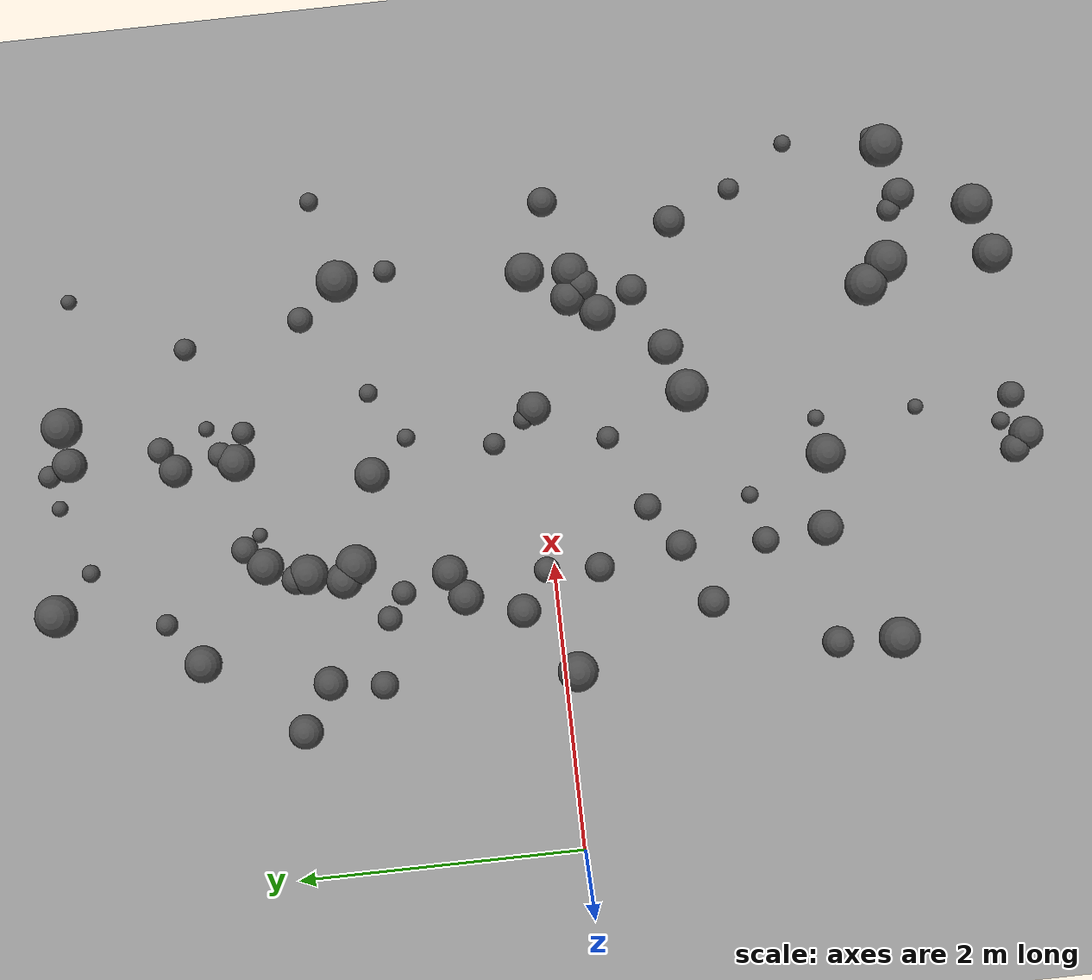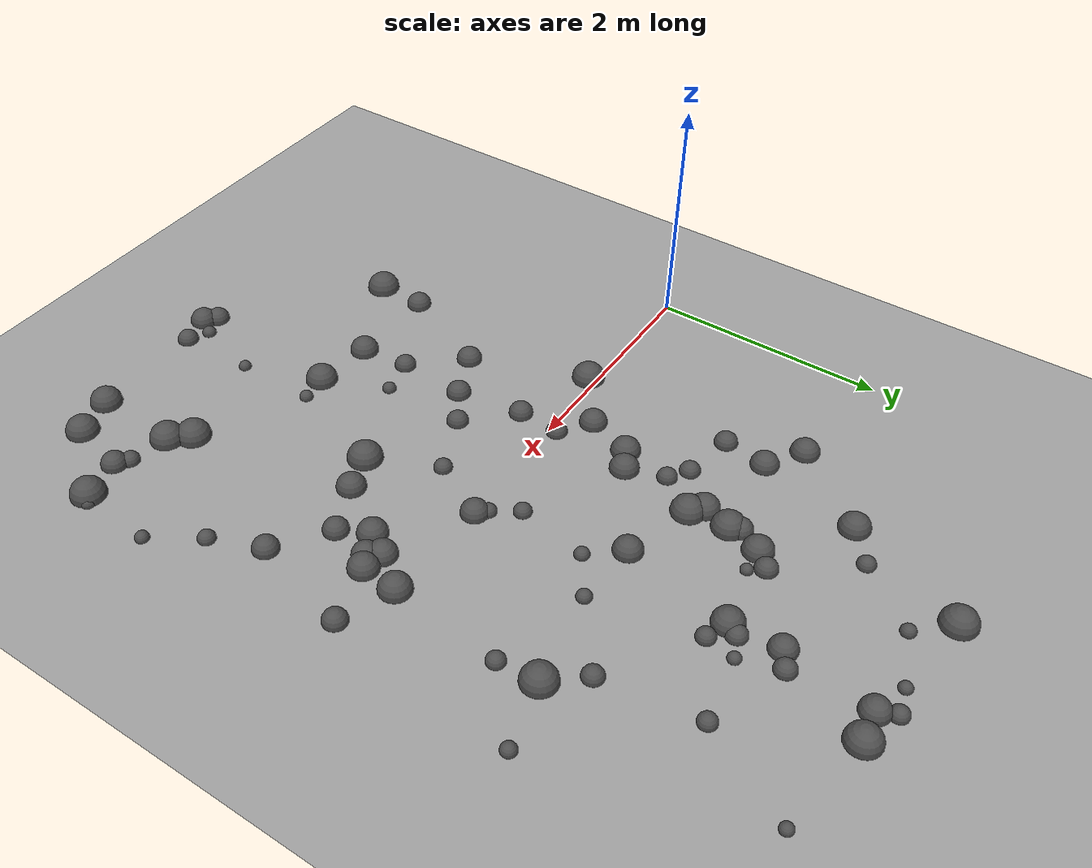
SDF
<sdf version="1.8">
 <world name="bumpy_world">
  <model name="ground_plane">
   <static>true</static>
   <link name="link">
    <collision name="collision">
     <geometry><plane><normal>0 0 1</normal><size>100 100</size></plane></geometry>
    </collision>
    <visual name="visual">
     <geometry><plane><normal>0 0 1</normal><size>100 100</size></plane></geometry>
     <material><ambient>0.6 0.6 0.6 1</ambient><diffuse>0.6 0.6 0.6 1</diffuse></material>
    </visual>
   </link>
  </model>
  <model name="bump_10">
   <static>true</static>
   <pose>2.8198943444306965 -1.9201657104563592 0.0 0 0 0</pose>
   <link name="link">
    <collision name="collision">
     <geometry><sphere><radius>0.05871827700337499</radius></sphere></geometry>
    </collision>
    <visual name="visual">
     <geometry><sphere><radius>0.05871827700337499</radius></sphere></geometry>
     <material><ambient>0.3 0.3 0.3 1</ambient><diffuse>0.3 0.3 0.3 1</diffuse></material>
    </visual>
   </link>
  </model>
  <model name="bump_12">
   <static>true</static>
   <pose>3.1977501311860017 2.3142075232296957 0.0 0 0 0</pose>
   <link name="link">
    <collision name="collision">
     <geometry><sphere><radius>0.055547300443830605</radius></sphere></geometry>
    </collision>
    <visual name="visual">
     <geometry><sphere><radius>0.055547300443830605</radius></sphere></geometry>
     <material><ambient>0.3 0.3 0.3 1</ambient><diffuse>0.3 0.3 0.3 1</diffuse></material>
    </visual>
   </link>
  </model>
  <model name="bump_22">
   <static>true</static>
   <pose>1.2356416099117413 -2.334673040265158 0.0 0 0 0</pose>
   <link name="link">
    <collision name="collision">
     <geometry><sphere><radius>0.14522170684553803</radius></sphere></geometry>
    </collision>
    <visual name="visual">
     <geometry><sphere><radius>0.14522170684553803</radius></sphere></geometry>
     <material><ambient>0.3 0.3 0.3 1</ambient><diffuse>0.3 0.3 0.3 1</diffuse></material>
    </visual>
   </link>
  </model>
  <model name="bump_25">
   <static>true</static>
   <pose>4.210508719758319 -2.5828001585416596 0.0 0 0 0</pose>
   <link name="link">
    <collision name="collision">
     <geometry><sphere><radius>0.08065998538427757</radius></sphere></geometry>
    </collision>
    <visual name="visual">
     <geometry><sphere><radius>0.08065998538427757</radius></sphere></geometry>
     <material><ambient>0.3 0.3 0.3 1</ambient><diffuse>0.3 0.3 0.3 1</diffuse></material>
    </visual>
   </link>
  </model>
  <model name="bump_33">
   <static>true</static>
   <pose>1.7474648537265793 1.1811615171004792 0.0 0 0 0</pose>
   <link name="link">
    <collision name="collision">
     <geometry><sphere><radius>0.08729903216262903</radius></sphere></geometry>
    </collision>
    <visual name="visual">
     <geometry><sphere><radius>0.08729903216262903</radius></sphere></geometry>
     <material><ambient>0.3 0.3 0.3 1</ambient><diffuse>0.3 0.3 0.3 1</diffuse></material>
    </visual>
   </link>
  </model>
  <model name="bump_45">
   <static>true</static>
   <pose>2.930702308674185 2.558518357739353 0.0 0 0 0</pose>
   <link name="link">
    <collision name="collision">
     <geometry><sphere><radius>0.11496231476188008</radius></sphere></geometry>
    </collision>
    <visual name="visual">
     <geometry><sphere><radius>0.11496231476188008</radius></sphere></geometry>
     <material><ambient>0.3 0.3 0.3 1</ambient><diffuse>0.3 0.3 0.3 1</diffuse></material>
    </visual>
   </link>
  </model>
  <model name="bump_51">
   <static>true</static>
   <pose>2.052149808977422 -1.9052374049976455 0.0 0 0 0</pose>
   <link name="link">
    <collision name="collision">
     <geometry><sphere><radius>0.1254347078864384</radius></sphere></geometry>
    </collision>
    <visual name="visual">
     <geometry><sphere><radius>0.1254347078864384</radius></sphere></geometry>
     <material><ambient>0.3 0.3 0.3 1</ambient><diffuse>0.3 0.3 0.3 1</diffuse></material>
    </visual>
   </link>
  </model>
  <model name="bump_54">
   <static>true</static>
   <pose>1.6229721266628472 -1.0728003851126684 0.0 0 0 0</pose>
   <link name="link">
    <collision name="collision">
     <geometry><sphere><radius>0.11103114653822796</radius></sphere></geometry>
    </collision>
    <visual name="visual">
     <geometry><sphere><radius>0.11103114653822796</radius></sphere></geometry>
     <material><ambient>0.3 0.3 0.3 1</ambient><diffuse>0.3 0.3 0.3 1</diffuse></material>
    </visual>
   </link>
  </model>
  <model name="bump_62">
   <static>true</static>
   <pose>3.885796628342348 1.584061793629024 0.0 0 0 0</pose>
   <link name="link">
    <collision name="collision">
     <geometry><sphere><radius>0.08964944021255997</radius></sphere></geometry>
    </collision>
    <visual name="visual">
     <geometry><sphere><radius>0.08964944021255997</radius></sphere></geometry>
     <material><ambient>0.3 0.3 0.3 1</ambient><diffuse>0.3 0.3 0.3 1</diffuse></material>
    </visual>
   </link>
  </model>
  <model name="bump_68">
   <static>true</static>
   <pose>3.710123732801496 -2.3693969549017107 0.0 0 0 0</pose>
   <link name="link">
    <collision name="collision">
     <geometry><sphere><radius>0.14830360818643148</radius></sphere></geometry>
    </collision>
    <visual name="visual">
     <geometry><sphere><radius>0.14830360818643148</radius></sphere></geometry>
     <material><ambient>0.3 0.3 0.3 1</ambient><diffuse>0.3 0.3 0.3 1</diffuse></material>
    </visual>
   </link>
  </model>
  <model name="bump_70">
   <static>true</static>
   <pose>4.734207004023243 -2.5053065922183353 0.0 0 0 0</pose>
   <link name="link">
    <collision name="collision">
     <geometry><sphere><radius>0.06399001163010644</radius></sphere></geometry>
    </collision>
    <visual name="visual">
     <geometry><sphere><radius>0.06399001163010644</radius></sphere></geometry>
     <material><ambient>0.3 0.3 0.3 1</ambient><diffuse>0.3 0.3 0.3 1</diffuse></material>
    </visual>
   </link>
  </model>
  <model name="bump_73">
   <static>true</static>
   <pose>3.831733680356071 -3.268893120792354 0.0 0 0 0</pose>
   <link name="link">
    <collision name="collision">
     <geometry><sphere><radius>0.1375089017497998</radius></sphere></geometry>
    </collision>
    <visual name="visual">
     <geometry><sphere><radius>0.1375089017497998</radius></sphere></geometry>
     <material><ambient>0.3 0.3 0.3 1</ambient><diffuse>0.3 0.3 0.3 1</diffuse></material>
    </visual>
   </link>
  </model>
  <model name="bump_88">
   <static>true</static>
   <pose>3.7153868618442027 -0.48606740721496067 0.0 0 0 0</pose>
   <link name="link">
    <collision name="collision">
     <geometry><sphere><radius>0.1274575614804378</radius></sphere></geometry>
    </collision>
    <visual name="visual">
     <geometry><sphere><radius>0.1274575614804378</radius></sphere></geometry>
     <material><ambient>0.3 0.3 0.3 1</ambient><diffuse>0.3 0.3 0.3 1</diffuse></material>
    </visual>
   </link>
  </model>
  <model name="bump_93">
   <static>true</static>
   <pose>3.0826629513447363 2.6470790627789427 0.0 0 0 0</pose>
   <link name="link">
    <collision name="collision">
     <geometry><sphere><radius>0.0905556618998537</radius></sphere></geometry>
    </collision>
    <visual name="visual">
     <geometry><sphere><radius>0.0905556618998537</radius></sphere></geometry>
     <material><ambient>0.3 0.3 0.3 1</ambient><diffuse>0.3 0.3 0.3 1</diffuse></material>
    </visual>
   </link>
  </model>
  <model name="bump_94">
   <static>true</static>
   <pose>1.8386751377057422 0.6395333112134258 0.0 0 0 0</pose>
   <link name="link">
    <collision name="collision">
     <geometry><sphere><radius>0.1251058097517386</radius></sphere></geometry>
    </collision>
    <visual name="visual">
     <geometry><sphere><radius>0.1251058097517386</radius></sphere></geometry>
     <material><ambient>0.3 0.3 0.3 1</ambient><diffuse>0.3 0.3 0.3 1</diffuse></material>
    </visual>
   </link>
  </model>
  <model name="bump_97">
   <static>true</static>
   <pose>2.4632255060504904 -3.2790495559302224 0.0 0 0 0</pose>
   <link name="link">
    <collision name="collision">
     <geometry><sphere><radius>0.10094150722244792</radius></sphere></geometry>
    </collision>
    <visual name="visual">
     <geometry><sphere><radius>0.10094150722244792</radius></sphere></geometry>
     <material><ambient>0.3 0.3 0.3 1</ambient><diffuse>0.3 0.3 0.3 1</diffuse></material>
    </visual>
   </link>
  </model>
  <model name="bump_98">
   <static>true</static>
   <pose>2.2825291329505166 3.219972751323204 0.0 0 0 0</pose>
   <link name="link">
    <collision name="collision">
     <geometry><sphere><radius>0.06255795516376597</radius></sphere></geometry>
    </collision>
    <visual name="visual">
     <geometry><sphere><radius>0.06255795516376597</radius></sphere></geometry>
     <material><ambient>0.3 0.3 0.3 1</ambient><diffuse>0.3 0.3 0.3 1</diffuse></material>
    </visual>
   </link>
  </model>
  <model name="bump_101">
   <static>true</static>
   <pose>2.113953201336293 1.7131597052439798 0.0 0 0 0</pose>
   <link name="link">
    <collision name="collision">
     <geometry><sphere><radius>0.140882410743292</radius></sphere></geometry>
    </collision>
    <visual name="visual">
     <geometry><sphere><radius>0.140882410743292</radius></sphere></geometry>
     <material><ambient>0.3 0.3 0.3 1</ambient><diffuse>0.3 0.3 0.3 1</diffuse></material>
    </visual>
   </link>
  </model>
  <model name="bump_102">
   <static>true</static>
   <pose>2.839772443935972 -0.4636828391519221 0.0 0 0 0</pose>
   <link name="link">
    <collision name="collision">
     <geometry><sphere><radius>0.07872676548192606</radius></sphere></geometry>
    </collision>
    <visual name="visual">
     <geometry><sphere><radius>0.07872676548192606</radius></sphere></geometry>
     <material><ambient>0.3 0.3 0.3 1</ambient><diffuse>0.3 0.3 0.3 1</diffuse></material>
    </visual>
   </link>
  </model>
  <model name="bump_104">
   <static>true</static>
   <pose>2.3305961854765145 2.1366397159677195 0.0 0 0 0</pose>
   <link name="link">
    <collision name="collision">
     <geometry><sphere><radius>0.09502109782018386</radius></sphere></geometry>
    </collision>
    <visual name="visual">
     <geometry><sphere><radius>0.09502109782018386</radius></sphere></geometry>
     <material><ambient>0.3 0.3 0.3 1</ambient><diffuse>0.3 0.3 0.3 1</diffuse></material>
    </visual>
   </link>
  </model>
  <model name="bump_113">
   <static>true</static>
   <pose>2.7546524437755475 3.3875248887913605 0.0 0 0 0</pose>
   <link name="link">
    <collision name="collision">
     <geometry><sphere><radius>0.05578260713918642</radius></sphere></geometry>
    </collision>
    <visual name="visual">
     <geometry><sphere><radius>0.05578260713918642</radius></sphere></geometry>
     <material><ambient>0.3 0.3 0.3 1</ambient><diffuse>0.3 0.3 0.3 1</diffuse></material>
    </visual>
   </link>
  </model>
  <model name="bump_131">
   <static>true</static>
   <pose>1.3433806546777243 1.640374459683727 0.0 0 0 0</pose>
   <link name="link">
    <collision name="collision">
     <geometry><sphere><radius>0.11983635138215683</radius></sphere></geometry>
    </collision>
    <visual name="visual">
     <geometry><sphere><radius>0.11983635138215683</radius></sphere></geometry>
     <material><ambient>0.3 0.3 0.3 1</ambient><diffuse>0.3 0.3 0.3 1</diffuse></material>
    </visual>
   </link>
  </model>
  <model name="bump_138">
   <static>true</static>
   <pose>4.475443717476754 -1.4871818574814024 0.0 0 0 0</pose>
   <link name="link">
    <collision name="collision">
     <geometry><sphere><radius>0.07454477998187461</radius></sphere></geometry>
    </collision>
    <visual name="visual">
     <geometry><sphere><radius>0.07454477998187461</radius></sphere></geometry>
     <material><ambient>0.3 0.3 0.3 1</ambient><diffuse>0.3 0.3 0.3 1</diffuse></material>
    </visual>
   </link>
  </model>
  <model name="bump_147">
   <static>true</static>
   <pose>1.239551789465644 -0.08258524739642503 0.0 0 0 0</pose>
   <link name="link">
    <collision name="collision">
     <geometry><sphere><radius>0.14225937523582882</radius></sphere></geometry>
    </collision>
    <visual name="visual">
     <geometry><sphere><radius>0.14225937523582882</radius></sphere></geometry>
     <material><ambient>0.3 0.3 0.3 1</ambient><diffuse>0.3 0.3 0.3 1</diffuse></material>
    </visual>
   </link>
  </model>
  <model name="bump_148">
   <static>true</static>
   <pose>4.295126678844779 -1.0508836546479472 0.0 0 0 0</pose>
   <link name="link">
    <collision name="collision">
     <geometry><sphere><radius>0.11060893104151623</radius></sphere></geometry>
    </collision>
    <visual name="visual">
     <geometry><sphere><radius>0.11060893104151623</radius></sphere></geometry>
     <material><ambient>0.3 0.3 0.3 1</ambient><diffuse>0.3 0.3 0.3 1</diffuse></material>
    </visual>
   </link>
  </model>
  <model name="bump_152">
   <static>true</static>
   <pose>2.989130033686603 0.9367895774963406 0.0 0 0 0</pose>
   <link name="link">
    <collision name="collision">
     <geometry><sphere><radius>0.06373381833836224</radius></sphere></geometry>
    </collision>
    <visual name="visual">
     <geometry><sphere><radius>0.06373381833836224</radius></sphere></geometry>
     <material><ambient>0.3 0.3 0.3 1</ambient><diffuse>0.3 0.3 0.3 1</diffuse></material>
    </visual>
   </link>
  </model>
  <model name="bump_153">
   <static>true</static>
   <pose>1.2523800737522832 -1.9054291846818225 0.0 0 0 0</pose>
   <link name="link">
    <collision name="collision">
     <geometry><sphere><radius>0.1096069353312353</radius></sphere></geometry>
    </collision>
    <visual name="visual">
     <geometry><sphere><radius>0.1096069353312353</radius></sphere></geometry>
     <material><ambient>0.3 0.3 0.3 1</ambient><diffuse>0.3 0.3 0.3 1</diffuse></material>
    </visual>
   </link>
  </model>
  <model name="bump_154">
   <static>true</static>
   <pose>2.5682358566220387 -1.9615318062589844 0.0 0 0 0</pose>
   <link name="link">
    <collision name="collision">
     <geometry><sphere><radius>0.1382767967893071</radius></sphere></geometry>
    </collision>
    <visual name="visual">
     <geometry><sphere><radius>0.1382767967893071</radius></sphere></geometry>
     <material><ambient>0.3 0.3 0.3 1</ambient><diffuse>0.3 0.3 0.3 1</diffuse></material>
    </visual>
   </link>
  </model>
  <model name="bump_160">
   <static>true</static>
   <pose>2.823174166353744 -2.618518037328722 0.0 0 0 0</pose>
   <link name="link">
    <collision name="collision">
     <geometry><sphere><radius>0.05463228698960087</radius></sphere></geometry>
    </collision>
    <visual name="visual">
     <geometry><sphere><radius>0.05463228698960087</radius></sphere></geometry>
     <material><ambient>0.3 0.3 0.3 1</ambient><diffuse>0.3 0.3 0.3 1</diffuse></material>
    </visual>
   </link>
  </model>
  <model name="bump_163">
   <static>true</static>
   <pose>3.915459582970075 -0.39130810622168655 0.0 0 0 0</pose>
   <link name="link">
    <collision name="collision">
     <geometry><sphere><radius>0.11601652286100339</radius></sphere></geometry>
    </collision>
    <visual name="visual">
     <geometry><sphere><radius>0.11601652286100339</radius></sphere></geometry>
     <material><ambient>0.3 0.3 0.3 1</ambient><diffuse>0.3 0.3 0.3 1</diffuse></material>
    </visual>
   </link>
  </model>
  <model name="bump_165">
   <static>true</static>
   <pose>2.559022791442771 -3.365847123328888 0.0 0 0 0</pose>
   <link name="link">
    <collision name="collision">
     <geometry><sphere><radius>0.11768975534073414</radius></sphere></geometry>
    </collision>
    <visual name="visual">
     <geometry><sphere><radius>0.11768975534073414</radius></sphere></geometry>
     <material><ambient>0.3 0.3 0.3 1</ambient><diffuse>0.3 0.3 0.3 1</diffuse></material>
    </visual>
   </link>
  </model>
  <model name="bump_169">
   <static>true</static>
   <pose>4.663589037547865 -2.5783977367173643 0.0 0 0 0</pose>
   <link name="link">
    <collision name="collision">
     <geometry><sphere><radius>0.14954405462232173</radius></sphere></geometry>
    </collision>
    <visual name="visual">
     <geometry><sphere><radius>0.14954405462232173</radius></sphere></geometry>
     <material><ambient>0.3 0.3 0.3 1</ambient><diffuse>0.3 0.3 0.3 1</diffuse></material>
    </visual>
   </link>
  </model>
  <model name="bump_171">
   <static>true</static>
   <pose>1.96810095747861 0.05792050261347281 0.0 0 0 0</pose>
   <link name="link">
    <collision name="collision">
     <geometry><sphere><radius>0.09086229732646502</radius></sphere></geometry>
    </collision>
    <visual name="visual">
     <geometry><sphere><radius>0.09086229732646502</radius></sphere></geometry>
     <material><ambient>0.3 0.3 0.3 1</ambient><diffuse>0.3 0.3 0.3 1</diffuse></material>
    </visual>
   </link>
  </model>
  <model name="bump_181">
   <static>true</static>
   <pose>4.31366574445139 -2.6604852992685486 0.0 0 0 0</pose>
   <link name="link">
    <collision name="collision">
     <geometry><sphere><radius>0.11123309289026845</radius></sphere></geometry>
    </collision>
    <visual name="visual">
     <geometry><sphere><radius>0.11123309289026845</radius></sphere></geometry>
     <material><ambient>0.3 0.3 0.3 1</ambient><diffuse>0.3 0.3 0.3 1</diffuse></material>
    </visual>
   </link>
  </model>
  <model name="bump_182">
   <static>true</static>
   <pose>4.1283113343706495 1.3009932205422032 0.0 0 0 0</pose>
   <link name="link">
    <collision name="collision">
     <geometry><sphere><radius>0.1478534831599363</radius></sphere></geometry>
    </collision>
    <visual name="visual">
     <geometry><sphere><radius>0.1478534831599363</radius></sphere></geometry>
     <material><ambient>0.3 0.3 0.3 1</ambient><diffuse>0.3 0.3 0.3 1</diffuse></material>
    </visual>
   </link>
  </model>
  <model name="bump_187">
   <static>true</static>
   <pose>3.312574382387864 3.3169684360859115 0.0 0 0 0</pose>
   <link name="link">
    <collision name="collision">
     <geometry><sphere><radius>0.1426482713202864</radius></sphere></geometry>
    </collision>
    <visual name="visual">
     <geometry><sphere><radius>0.1426482713202864</radius></sphere></geometry>
     <material><ambient>0.3 0.3 0.3 1</ambient><diffuse>0.3 0.3 0.3 1</diffuse></material>
    </visual>
   </link>
  </model>
  <model name="bump_194">
   <static>true</static>
   <pose>4.181448138385077 3.1763259540249393 0.0 0 0 0</pose>
   <link name="link">
    <collision name="collision">
     <geometry><sphere><radius>0.053722803313194026</radius></sphere></geometry>
    </collision>
    <visual name="visual">
     <geometry><sphere><radius>0.053722803313194026</radius></sphere></geometry>
     <material><ambient>0.3 0.3 0.3 1</ambient><diffuse>0.3 0.3 0.3 1</diffuse></material>
    </visual>
   </link>
  </model>
  <model name="bump_195">
   <static>true</static>
   <pose>2.019879592385235 0.7339009314919664 0.0 0 0 0</pose>
   <link name="link">
    <collision name="collision">
     <geometry><sphere><radius>0.12420121642785616</radius></sphere></geometry>
    </collision>
    <visual name="visual">
     <geometry><sphere><radius>0.12420121642785616</radius></sphere></geometry>
     <material><ambient>0.3 0.3 0.3 1</ambient><diffuse>0.3 0.3 0.3 1</diffuse></material>
    </visual>
   </link>
  </model>
  <model name="bump_197">
   <static>true</static>
   <pose>1.913608376430971 1.065831178790999 0.0 0 0 0</pose>
   <link name="link">
    <collision name="collision">
     <geometry><sphere><radius>0.08520466893041177</radius></sphere></geometry>
    </collision>
    <visual name="visual">
     <geometry><sphere><radius>0.08520466893041177</radius></sphere></geometry>
     <material><ambient>0.3 0.3 0.3 1</ambient><diffuse>0.3 0.3 0.3 1</diffuse></material>
    </visual>
   </link>
  </model>
  <model name="bump_198">
   <static>true</static>
   <pose>1.026557186217708 1.8463336733117002 0.0 0 0 0</pose>
   <link name="link">
    <collision name="collision">
     <geometry><sphere><radius>0.12249034827331472</radius></sphere></geometry>
    </collision>
    <visual name="visual">
     <geometry><sphere><radius>0.12249034827331472</radius></sphere></geometry>
     <material><ambient>0.3 0.3 0.3 1</ambient><diffuse>0.3 0.3 0.3 1</diffuse></material>
    </visual>
   </link>
  </model>
  <model name="bump_213">
   <static>true</static>
   <pose>1.2904359886859746 1.2664428262999774 0.0 0 0 0</pose>
   <link name="link">
    <collision name="collision">
     <geometry><sphere><radius>0.09923747779372669</radius></sphere></geometry>
    </collision>
    <visual name="visual">
     <geometry><sphere><radius>0.09923747779372669</radius></sphere></geometry>
     <material><ambient>0.3 0.3 0.3 1</ambient><diffuse>0.3 0.3 0.3 1</diffuse></material>
    </visual>
   </link>
  </model>
  <model name="bump_217">
   <static>true</static>
   <pose>2.3360231962476874 -1.4049903024520658 0.0 0 0 0</pose>
   <link name="link">
    <collision name="collision">
     <geometry><sphere><radius>0.0596376450056631</radius></sphere></geometry>
    </collision>
    <visual name="visual">
     <geometry><sphere><radius>0.0596376450056631</radius></sphere></geometry>
     <material><ambient>0.3 0.3 0.3 1</ambient><diffuse>0.3 0.3 0.3 1</diffuse></material>
    </visual>
   </link>
  </model>
  <model name="bump_219">
   <static>true</static>
   <pose>2.0469356600661652 1.4690940084994306 0.0 0 0 0</pose>
   <link name="link">
    <collision name="collision">
     <geometry><sphere><radius>0.12887783465565544</radius></sphere></geometry>
    </collision>
    <visual name="visual">
     <geometry><sphere><radius>0.12887783465565544</radius></sphere></geometry>
     <material><ambient>0.3 0.3 0.3 1</ambient><diffuse>0.3 0.3 0.3 1</diffuse></material>
    </visual>
   </link>
  </model>
  <model name="bump_220">
   <static>true</static>
   <pose>2.9427420338610606 2.134190832619856 0.0 0 0 0</pose>
   <link name="link">
    <collision name="collision">
     <geometry><sphere><radius>0.13184218365605554</radius></sphere></geometry>
    </collision>
    <visual name="visual">
     <geometry><sphere><radius>0.13184218365605554</radius></sphere></geometry>
     <material><ambient>0.3 0.3 0.3 1</ambient><diffuse>0.3 0.3 0.3 1</diffuse></material>
    </visual>
   </link>
  </model>
  <model name="bump_221">
   <static>true</static>
   <pose>3.0478017765504255 3.288665272213792 0.0 0 0 0</pose>
   <link name="link">
    <collision name="collision">
     <geometry><sphere><radius>0.12028408697798053</radius></sphere></geometry>
    </collision>
    <visual name="visual">
     <geometry><sphere><radius>0.12028408697798053</radius></sphere></geometry>
     <material><ambient>0.3 0.3 0.3 1</ambient><diffuse>0.3 0.3 0.3 1</diffuse></material>
    </visual>
   </link>
  </model>
  <model name="bump_222">
   <static>true</static>
   <pose>3.8484720785554547 -0.7379387926825829 0.0 0 0 0</pose>
   <link name="link">
    <collision name="collision">
     <geometry><sphere><radius>0.10804977544166525</radius></sphere></geometry>
    </collision>
    <visual name="visual">
     <geometry><sphere><radius>0.10804977544166525</radius></sphere></geometry>
     <material><ambient>0.3 0.3 0.3 1</ambient><diffuse>0.3 0.3 0.3 1</diffuse></material>
    </visual>
   </link>
  </model>
  <model name="bump_226">
   <static>true</static>
   <pose>4.190065862981863 -3.1640575242187303 0.0 0 0 0</pose>
   <link name="link">
    <collision name="collision">
     <geometry><sphere><radius>0.14132805263883158</radius></sphere></geometry>
    </collision>
    <visual name="visual">
     <geometry><sphere><radius>0.14132805263883158</radius></sphere></geometry>
     <material><ambient>0.3 0.3 0.3 1</ambient><diffuse>0.3 0.3 0.3 1</diffuse></material>
    </visual>
   </link>
  </model>
  <model name="bump_234">
   <static>true</static>
   <pose>2.7571486282162194 1.2006771168649752 0.0 0 0 0</pose>
   <link name="link">
    <collision name="collision">
     <geometry><sphere><radius>0.12345257003797212</radius></sphere></geometry>
    </collision>
    <visual name="visual">
     <geometry><sphere><radius>0.12345257003797212</radius></sphere></geometry>
     <material><ambient>0.3 0.3 0.3 1</ambient><diffuse>0.3 0.3 0.3 1</diffuse></material>
    </visual>
   </link>
  </model>
  <model name="bump_236">
   <static>true</static>
   <pose>2.1445210907578147 1.3782290132759254 0.0 0 0 0</pose>
   <link name="link">
    <collision name="collision">
     <geometry><sphere><radius>0.1431531982858969</radius></sphere></geometry>
    </collision>
    <visual name="visual">
     <geometry><sphere><radius>0.1431531982858969</radius></sphere></geometry>
     <material><ambient>0.3 0.3 0.3 1</ambient><diffuse>0.3 0.3 0.3 1</diffuse></material>
    </visual>
   </link>
  </model>
  <model name="bump_240">
   <static>true</static>
   <pose>3.4259120086069563 -0.9315311863408753 0.0 0 0 0</pose>
   <link name="link">
    <collision name="collision">
     <geometry><sphere><radius>0.12434741767730106</radius></sphere></geometry>
    </collision>
    <visual name="visual">
     <geometry><sphere><radius>0.12434741767730106</radius></sphere></geometry>
     <material><ambient>0.3 0.3 0.3 1</ambient><diffuse>0.3 0.3 0.3 1</diffuse></material>
    </visual>
   </link>
  </model>
  <model name="bump_242">
   <static>true</static>
   <pose>4.750904687071319 -1.8950429314444621 0.0 0 0 0</pose>
   <link name="link">
    <collision name="collision">
     <geometry><sphere><radius>0.059586467130888235</radius></sphere></geometry>
    </collision>
    <visual name="visual">
     <geometry><sphere><radius>0.059586467130888235</radius></sphere></geometry>
     <material><ambient>0.3 0.3 0.3 1</ambient><diffuse>0.3 0.3 0.3 1</diffuse></material>
    </visual>
   </link>
  </model>
  <model name="bump_246">
   <static>true</static>
   <pose>4.699041671412204 1.4363234105784795 0.0 0 0 0</pose>
   <link name="link">
    <collision name="collision">
     <geometry><sphere><radius>0.06502788268117271</radius></sphere></geometry>
    </collision>
    <visual name="visual">
     <geometry><sphere><radius>0.06502788268117271</radius></sphere></geometry>
     <material><ambient>0.3 0.3 0.3 1</ambient><diffuse>0.3 0.3 0.3 1</diffuse></material>
    </visual>
   </link>
  </model>
  <model name="bump_247">
   <static>true</static>
   <pose>2.0105434648393428 -1.4817748448311518 0.0 0 0 0</pose>
   <link name="link">
    <collision name="collision">
     <geometry><sphere><radius>0.09385865974261856</radius></sphere></geometry>
    </collision>
    <visual name="visual">
     <geometry><sphere><radius>0.09385865974261856</radius></sphere></geometry>
     <material><ambient>0.3 0.3 0.3 1</ambient><diffuse>0.3 0.3 0.3 1</diffuse></material>
    </visual>
   </link>
  </model>
  <model name="bump_250">
   <static>true</static>
   <pose>2.42196010881126 2.0211145577877456 0.0 0 0 0</pose>
   <link name="link">
    <collision name="collision">
     <geometry><sphere><radius>0.05320100230429439</radius></sphere></geometry>
    </collision>
    <visual name="visual">
     <geometry><sphere><radius>0.05320100230429439</radius></sphere></geometry>
     <material><ambient>0.3 0.3 0.3 1</ambient><diffuse>0.3 0.3 0.3 1</diffuse></material>
    </visual>
   </link>
  </model>
  <model name="bump_254">
   <static>true</static>
   <pose>3.1439459012137494 2.062363946040416 0.0 0 0 0</pose>
   <link name="link">
    <collision name="collision">
     <geometry><sphere><radius>0.08016933913598984</radius></sphere></geometry>
    </collision>
    <visual name="visual">
     <geometry><sphere><radius>0.08016933913598984</radius></sphere></geometry>
     <material><ambient>0.3 0.3 0.3 1</ambient><diffuse>0.3 0.3 0.3 1</diffuse></material>
    </visual>
   </link>
  </model>
  <model name="bump_255">
   <static>true</static>
   <pose>2.8360953118985264 -3.290592923609239 0.0 0 0 0</pose>
   <link name="link">
    <collision name="collision">
     <geometry><sphere><radius>0.09290569392362766</radius></sphere></geometry>
    </collision>
    <visual name="visual">
     <geometry><sphere><radius>0.09290569392362766</radius></sphere></geometry>
     <material><ambient>0.3 0.3 0.3 1</ambient><diffuse>0.3 0.3 0.3 1</diffuse></material>
    </visual>
   </link>
  </model>
  <model name="bump_270">
   <static>true</static>
   <pose>3.0976424163127345 0.028843968242257656 0.0 0 0 0</pose>
   <link name="link">
    <collision name="collision">
     <geometry><sphere><radius>0.11833456561955853</radius></sphere></geometry>
    </collision>
    <visual name="visual">
     <geometry><sphere><radius>0.11833456561955853</radius></sphere></geometry>
     <material><ambient>0.3 0.3 0.3 1</ambient><diffuse>0.3 0.3 0.3 1</diffuse></material>
    </visual>
   </link>
  </model>
  <model name="bump_284">
   <static>true</static>
   <pose>1.700911463353253 0.24798769785566765 0.0 0 0 0</pose>
   <link name="link">
    <collision name="collision">
     <geometry><sphere><radius>0.11887950031332405</radius></sphere></geometry>
    </collision>
    <visual name="visual">
     <geometry><sphere><radius>0.11887950031332405</radius></sphere></geometry>
     <material><ambient>0.3 0.3 0.3 1</ambient><diffuse>0.3 0.3 0.3 1</diffuse></material>
    </visual>
   </link>
  </model>
  <model name="bump_288">
   <static>true</static>
   <pose>3.83905758341431 -0.29252648960107575 0.0 0 0 0</pose>
   <link name="link">
    <collision name="collision">
     <geometry><sphere><radius>0.12432567293518576</radius></sphere></geometry>
    </collision>
    <visual name="visual">
     <geometry><sphere><radius>0.12432567293518576</radius></sphere></geometry>
     <material><ambient>0.3 0.3 0.3 1</ambient><diffuse>0.3 0.3 0.3 1</diffuse></material>
    </visual>
   </link>
  </model>
  <model name="bump_307">
   <static>true</static>
   <pose>1.9460256595354155 -0.3115169785767451 0.0 0 0 0</pose>
   <link name="link">
    <collision name="collision">
     <geometry><sphere><radius>0.1033590832198032</radius></sphere></geometry>
    </collision>
    <visual name="visual">
     <geometry><sphere><radius>0.1033590832198032</radius></sphere></geometry>
     <material><ambient>0.3 0.3 0.3 1</ambient><diffuse>0.3 0.3 0.3 1</diffuse></material>
    </visual>
   </link>
  </model>
  <model name="bump_314">
   <static>true</static>
   <pose>2.0125044751607133 3.4917508598447933 0.0 0 0 0</pose>
   <link name="link">
    <collision name="collision">
     <geometry><sphere><radius>0.1492403953949617</radius></sphere></geometry>
    </collision>
    <visual name="visual">
     <geometry><sphere><radius>0.1492403953949617</radius></sphere></geometry>
     <material><ambient>0.3 0.3 0.3 1</ambient><diffuse>0.3 0.3 0.3 1</diffuse></material>
    </visual>
   </link>
  </model>
  <model name="bump_316">
   <static>true</static>
   <pose>3.765732285425525 2.4036990614047564 0.0 0 0 0</pose>
   <link name="link">
    <collision name="collision">
     <geometry><sphere><radius>0.0774373971163412</radius></sphere></geometry>
    </collision>
    <visual name="visual">
     <geometry><sphere><radius>0.0774373971163412</radius></sphere></geometry>
     <material><ambient>0.3 0.3 0.3 1</ambient><diffuse>0.3 0.3 0.3 1</diffuse></material>
    </visual>
   </link>
  </model>
  <model name="bump_319">
   <static>true</static>
   <pose>1.8690118618615852 2.730842173660365 0.0 0 0 0</pose>
   <link name="link">
    <collision name="collision">
     <geometry><sphere><radius>0.07634720616465066</radius></sphere></geometry>
    </collision>
    <visual name="visual">
     <geometry><sphere><radius>0.07634720616465066</radius></sphere></geometry>
     <material><ambient>0.3 0.3 0.3 1</ambient><diffuse>0.3 0.3 0.3 1</diffuse></material>
    </visual>
   </link>
  </model>
  <model name="bump_323">
   <static>true</static>
   <pose>4.0247556081827565 -0.32450168252800493 0.0 0 0 0</pose>
   <link name="link">
    <collision name="collision">
     <geometry><sphere><radius>0.12881393771143207</radius></sphere></geometry>
    </collision>
    <visual name="visual">
     <geometry><sphere><radius>0.12881393771143207</radius></sphere></geometry>
     <material><ambient>0.3 0.3 0.3 1</ambient><diffuse>0.3 0.3 0.3 1</diffuse></material>
    </visual>
   </link>
  </model>
  <model name="bump_330">
   <static>true</static>
   <pose>2.878339306528849 0.3304268969923405 0.0 0 0 0</pose>
   <link name="link">
    <collision name="collision">
     <geometry><sphere><radius>0.07697367062692698</radius></sphere></geometry>
    </collision>
    <visual name="visual">
     <geometry><sphere><radius>0.07697367062692698</radius></sphere></geometry>
     <material><ambient>0.3 0.3 0.3 1</ambient><diffuse>0.3 0.3 0.3 1</diffuse></material>
    </visual>
   </link>
  </model>
  <model name="bump_332">
   <static>true</static>
   <pose>3.1082835621795435 -1.0474152743953802 0.0 0 0 0</pose>
   <link name="link">
    <collision name="collision">
     <geometry><sphere><radius>0.14990634811247133</radius></sphere></geometry>
    </collision>
    <visual name="visual">
     <geometry><sphere><radius>0.14990634811247133</radius></sphere></geometry>
     <material><ambient>0.3 0.3 0.3 1</ambient><diffuse>0.3 0.3 0.3 1</diffuse></material>
    </visual>
   </link>
  </model>
  <model name="bump_334">
   <static>true</static>
   <pose>3.0093280067462636 2.2360394772695056 0.0 0 0 0</pose>
   <link name="link">
    <collision name="collision">
     <geometry><sphere><radius>0.08883998246869339</radius></sphere></geometry>
    </collision>
    <visual name="visual">
     <geometry><sphere><radius>0.08883998246869339</radius></sphere></geometry>
     <material><ambient>0.3 0.3 0.3 1</ambient><diffuse>0.3 0.3 0.3 1</diffuse></material>
    </visual>
   </link>
  </model>
  <model name="bump_336">
   <static>true</static>
   <pose>3.855970277012391 -2.525993015615933 0.0 0 0 0</pose>
   <link name="link">
    <collision name="collision">
     <geometry><sphere><radius>0.14818094085562444</radius></sphere></geometry>
    </collision>
    <visual name="visual">
     <geometry><sphere><radius>0.14818094085562444</radius></sphere></geometry>
     <material><ambient>0.3 0.3 0.3 1</ambient><diffuse>0.3 0.3 0.3 1</diffuse></material>
    </visual>
   </link>
  </model>
  <model name="bump_338">
   <static>true</static>
   <pose>1.5706786967953161 2.5074639117704978 0.0 0 0 0</pose>
   <link name="link">
    <collision name="collision">
     <geometry><sphere><radius>0.1311926782855974</radius></sphere></geometry>
    </collision>
    <visual name="visual">
     <geometry><sphere><radius>0.1311926782855974</radius></sphere></geometry>
     <material><ambient>0.3 0.3 0.3 1</ambient><diffuse>0.3 0.3 0.3 1</diffuse></material>
    </visual>
   </link>
  </model>
  <model name="bump_343">
   <static>true</static>
   <pose>2.0366834591639615 -0.8892721946044952 0.0 0 0 0</pose>
   <link name="link">
    <collision name="collision">
     <geometry><sphere><radius>0.10691814498510738</radius></sphere></geometry>
    </collision>
    <visual name="visual">
     <geometry><sphere><radius>0.10691814498510738</radius></sphere></geometry>
     <material><ambient>0.3 0.3 0.3 1</ambient><diffuse>0.3 0.3 0.3 1</diffuse></material>
    </visual>
   </link>
  </model>
  <model name="bump_345">
   <static>true</static>
   <pose>4.049400263952094 -0.008903549091920482 0.0 0 0 0</pose>
   <link name="link">
    <collision name="collision">
     <geometry><sphere><radius>0.1377038602617061</radius></sphere></geometry>
    </collision>
    <visual name="visual">
     <geometry><sphere><radius>0.1377038602617061</radius></sphere></geometry>
     <material><ambient>0.3 0.3 0.3 1</ambient><diffuse>0.3 0.3 0.3 1</diffuse></material>
    </visual>
   </link>
  </model>
  <model name="bump_348">
   <static>true</static>
   <pose>3.326416444078447 1.166034814381053 0.0 0 0 0</pose>
   <link name="link">
    <collision name="collision">
     <geometry><sphere><radius>0.06501421462974508</radius></sphere></geometry>
    </collision>
    <visual name="visual">
     <geometry><sphere><radius>0.06501421462974508</radius></sphere></geometry>
     <material><ambient>0.3 0.3 0.3 1</ambient><diffuse>0.3 0.3 0.3 1</diffuse></material>
    </visual>
   </link>
  </model>
  <model name="bump_361">
   <static>true</static>
   <pose>2.201764427249288 2.0053765554551592 0.0 0 0 0</pose>
   <link name="link">
    <collision name="collision">
     <geometry><sphere><radius>0.12910207917200245</radius></sphere></geometry>
    </collision>
    <visual name="visual">
     <geometry><sphere><radius>0.12910207917200245</radius></sphere></geometry>
     <material><ambient>0.3 0.3 0.3 1</ambient><diffuse>0.3 0.3 0.3 1</diffuse></material>
    </visual>
   </link>
  </model>
  <model name="bump_372">
   <static>true</static>
   <pose>3.0289258056942514 0.10941304121978712 0.0 0 0 0</pose>
   <link name="link">
    <collision name="collision">
     <geometry><sphere><radius>0.07084582336803182</radius></sphere></geometry>
    </collision>
    <visual name="visual">
     <geometry><sphere><radius>0.07084582336803182</radius></sphere></geometry>
     <material><ambient>0.3 0.3 0.3 1</ambient><diffuse>0.3 0.3 0.3 1</diffuse></material>
    </visual>
   </link>
  </model>
  <model name="bump_378">
   <static>true</static>
   <pose>4.524149114696156 -0.1829658206811371 0.0 0 0 0</pose>
   <link name="link">
    <collision name="collision">
     <geometry><sphere><radius>0.10315010799459166</radius></sphere></geometry>
    </collision>
    <visual name="visual">
     <geometry><sphere><radius>0.10315010799459166</radius></sphere></geometry>
     <material><ambient>0.3 0.3 0.3 1</ambient><diffuse>0.3 0.3 0.3 1</diffuse></material>
    </visual>
   </link>
  </model>
  <model name="bump_389">
   <static>true</static>
   <pose>2.0881183983021163 1.8000988476199424 0.0 0 0 0</pose>
   <link name="link">
    <collision name="collision">
     <geometry><sphere><radius>0.1044273942769488</radius></sphere></geometry>
    </collision>
    <visual name="visual">
     <geometry><sphere><radius>0.1044273942769488</radius></sphere></geometry>
     <material><ambient>0.3 0.3 0.3 1</ambient><diffuse>0.3 0.3 0.3 1</diffuse></material>
    </visual>
   </link>
  </model>
  <model name="bump_391">
   <static>true</static>
   <pose>4.160655789971731 0.9623647512867075 0.0 0 0 0</pose>
   <link name="link">
    <collision name="collision">
     <geometry><sphere><radius>0.07849519857136233</radius></sphere></geometry>
    </collision>
    <visual name="visual">
     <geometry><sphere><radius>0.07849519857136233</radius></sphere></geometry>
     <material><ambient>0.3 0.3 0.3 1</ambient><diffuse>0.3 0.3 0.3 1</diffuse></material>
    </visual>
   </link>
  </model>
  <model name="bump_394">
   <static>true</static>
   <pose>2.3298127414546244 -0.688597785697846 0.0 0 0 0</pose>
   <link name="link">
    <collision name="collision">
     <geometry><sphere><radius>0.09369744359502323</radius></sphere></geometry>
    </collision>
    <visual name="visual">
     <geometry><sphere><radius>0.09369744359502323</radius></sphere></geometry>
     <material><ambient>0.3 0.3 0.3 1</ambient><diffuse>0.3 0.3 0.3 1</diffuse></material>
    </visual>
   </link>
  </model>
  <model name="bump_395">
   <static>true</static>
   <pose>2.6610983891772046 -3.2006272192734992 0.0 0 0 0</pose>
   <link name="link">
    <collision name="collision">
     <geometry><sphere><radius>0.062367160028768555</radius></sphere></geometry>
    </collision>
    <visual name="visual">
     <geometry><sphere><radius>0.062367160028768555</radius></sphere></geometry>
     <material><ambient>0.3 0.3 0.3 1</ambient><diffuse>0.3 0.3 0.3 1</diffuse></material>
    </visual>
   </link>
  </model>
  <model name="bump_399">
   <static>true</static>
   <pose>2.9835234639325976 3.4344326426077902 0.0 0 0 0</pose>
   <link name="link">
    <collision name="collision">
     <geometry><sphere><radius>0.0778778601299521</radius></sphere></geometry>
    </collision>
    <visual name="visual">
     <geometry><sphere><radius>0.0778778601299521</radius></sphere></geometry>
     <material><ambient>0.3 0.3 0.3 1</ambient><diffuse>0.3 0.3 0.3 1</diffuse></material>
    </visual>
   </link>
  </model>
 </world>
</sdf>
